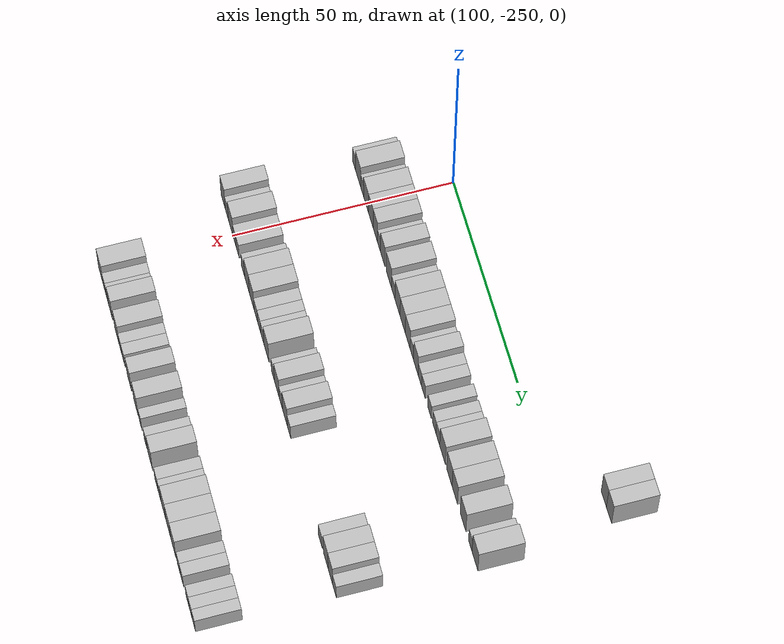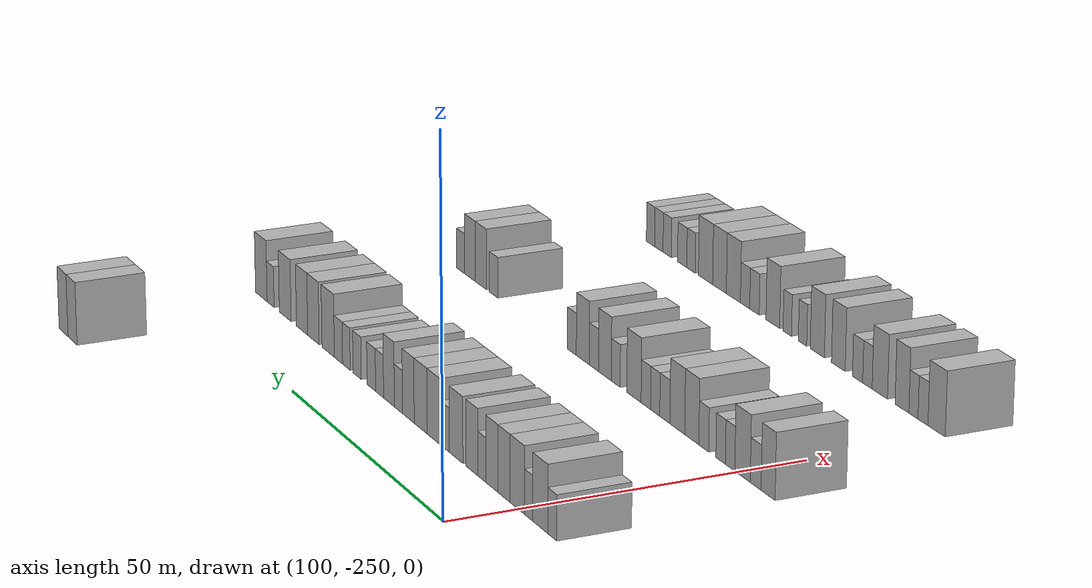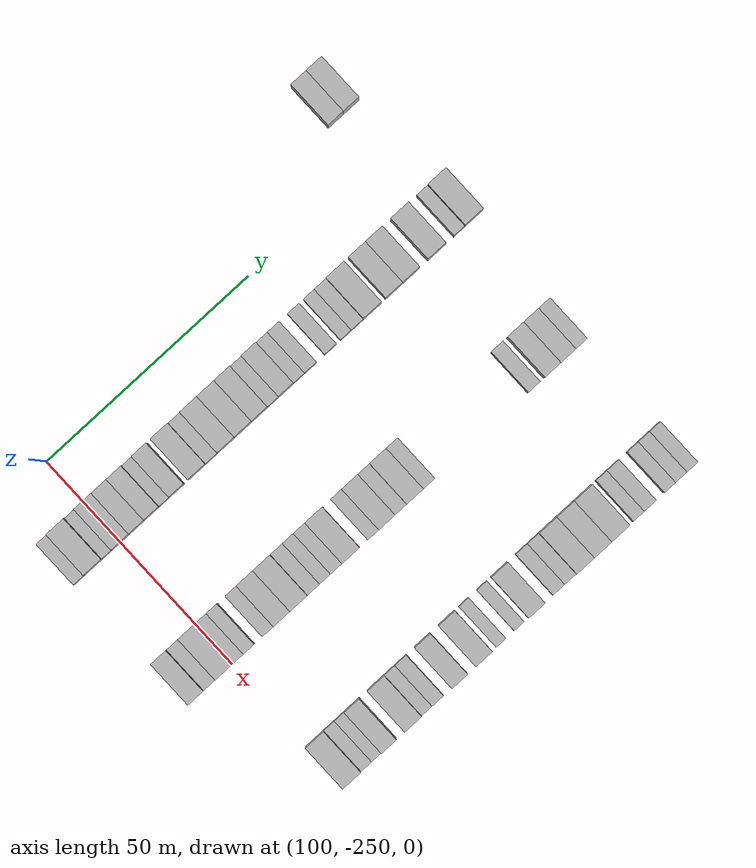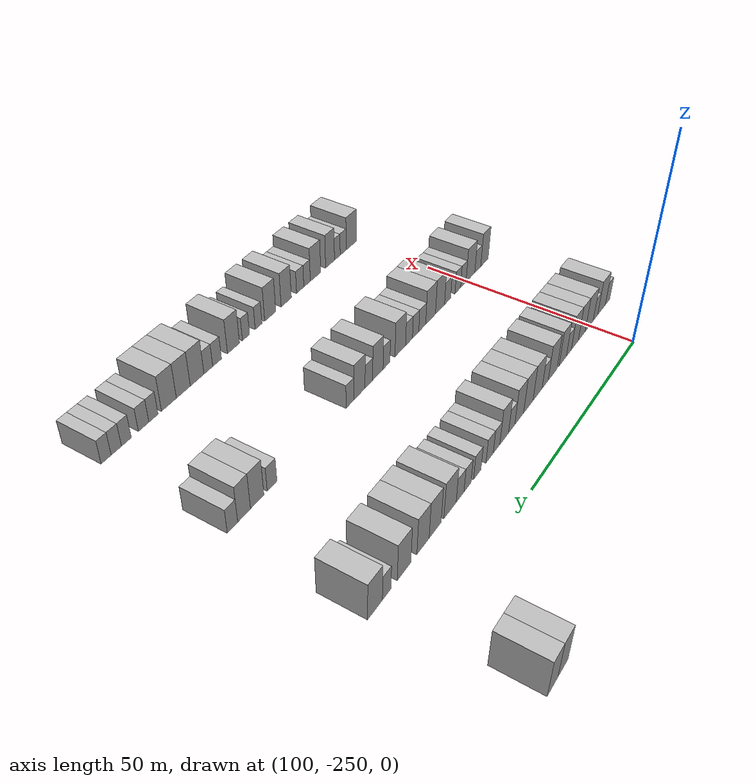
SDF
<sdf version="1.6">
 <world name="default">
  <model name="building_513">
   <static>1</static>
   <pose>85.0000 -169.2639 0 0.000000 0.000000 0.000000</pose>
   <link name="link">
    <pose>0 0 4.50 0 0 0</pose>
    <collision name="collision"><geometry><box><size>10.0000 3.7605 9.0000</size></box></geometry></collision>
    <visual name="visual">
     <cast_shadows>0</cast_shadows>
     <geometry><box><size>10.0000 3.7605 9.0000</size></box></geometry>
     <material>
      <script>
       <uri>model://HANNAS_wall/materials/scripts</uri>
       <uri>model://HANNAS_wall/materials/textures</uri>
       <name>vrc/HANNAS_wall</name>
      </script>
     </material>
    </visual>
   </link>
  </model>
  <model name="building_514">
   <static>1</static>
   <pose>85.0000 -165.4783 0 0.000000 0.000000 0.000000</pose>
   <link name="link">
    <pose>0 0 4.50 0 0 0</pose>
    <collision name="collision"><geometry><box><size>10.0000 3.8107 9.0000</size></box></geometry></collision>
    <visual name="visual">
     <cast_shadows>0</cast_shadows>
     <geometry><box><size>10.0000 3.8107 9.0000</size></box></geometry>
     <material>
      <script>
       <uri>model://HANNAS_wall/materials/scripts</uri>
       <uri>model://HANNAS_wall/materials/textures</uri>
       <name>vrc/HANNAS_wall</name>
      </script>
     </material>
    </visual>
   </link>
  </model>
  <model name="building_718">
   <static>1</static>
   <pose>115.0000 -259.9088 0 0.000000 0.000000 0.000000</pose>
   <link name="link">
    <pose>0 0 3.00 0 0 0</pose>
    <collision name="collision"><geometry><box><size>10.0000 2.6278 6.0000</size></box></geometry></collision>
    <visual name="visual">
     <cast_shadows>0</cast_shadows>
     <geometry><box><size>10.0000 2.6278 6.0000</size></box></geometry>
     <material>
      <script>
       <uri>model://HANNAS_wall/materials/scripts</uri>
       <uri>model://HANNAS_wall/materials/textures</uri>
       <name>vrc/HANNAS_wall</name>
      </script>
     </material>
    </visual>
   </link>
  </model>
  <model name="building_719">
   <static>1</static>
   <pose>115.0000 -256.4384 0 0.000000 0.000000 0.000000</pose>
   <link name="link">
    <pose>0 0 4.50 0 0 0</pose>
    <collision name="collision"><geometry><box><size>10.0000 4.3130 9.0000</size></box></geometry></collision>
    <visual name="visual">
     <cast_shadows>0</cast_shadows>
     <geometry><box><size>10.0000 4.3130 9.0000</size></box></geometry>
     <material>
      <script>
       <uri>model://HANNAS_wall/materials/scripts</uri>
       <uri>model://HANNAS_wall/materials/textures</uri>
       <name>vrc/HANNAS_wall</name>
      </script>
     </material>
    </visual>
   </link>
  </model>
  <model name="building_720">
   <static>1</static>
   <pose>115.0000 -253.0582 0 0.000000 0.000000 0.000000</pose>
   <link name="link">
    <pose>0 0 3.00 0 0 0</pose>
    <collision name="collision"><geometry><box><size>10.0000 2.4474 6.0000</size></box></geometry></collision>
    <visual name="visual">
     <cast_shadows>0</cast_shadows>
     <geometry><box><size>10.0000 2.4474 6.0000</size></box></geometry>
     <material>
      <script>
       <uri>model://HANNAS_wall/materials/scripts</uri>
       <uri>model://HANNAS_wall/materials/textures</uri>
       <name>vrc/HANNAS_wall</name>
      </script>
     </material>
    </visual>
   </link>
  </model>
  <model name="building_721">
   <static>1</static>
   <pose>115.0000 -249.6861 0 0.000000 0.000000 0.000000</pose>
   <link name="link">
    <pose>0 0 4.50 0 0 0</pose>
    <collision name="collision"><geometry><box><size>10.0000 4.2969 9.0000</size></box></geometry></collision>
    <visual name="visual">
     <cast_shadows>0</cast_shadows>
     <geometry><box><size>10.0000 4.2969 9.0000</size></box></geometry>
     <material>
      <script>
       <uri>model://HANNAS_wall/materials/scripts</uri>
       <uri>model://HANNAS_wall/materials/textures</uri>
       <name>vrc/HANNAS_wall</name>
      </script>
     </material>
    </visual>
   </link>
  </model>
  <model name="building_722">
   <static>1</static>
   <pose>115.0000 -245.6962 0 0.000000 0.000000 0.000000</pose>
   <link name="link">
    <pose>0 0 4.50 0 0 0</pose>
    <collision name="collision"><geometry><box><size>10.0000 3.6827 9.0000</size></box></geometry></collision>
    <visual name="visual">
     <cast_shadows>0</cast_shadows>
     <geometry><box><size>10.0000 3.6827 9.0000</size></box></geometry>
     <material>
      <script>
       <uri>model://HANNAS_wall/materials/scripts</uri>
       <uri>model://HANNAS_wall/materials/textures</uri>
       <name>vrc/HANNAS_wall</name>
      </script>
     </material>
    </visual>
   </link>
  </model>
  <model name="building_723">
   <static>1</static>
   <pose>115.0000 -242.0356 0 0.000000 0.000000 0.000000</pose>
   <link name="link">
    <pose>0 0 4.50 0 0 0</pose>
    <collision name="collision"><geometry><box><size>10.0000 3.6385 9.0000</size></box></geometry></collision>
    <visual name="visual">
     <cast_shadows>0</cast_shadows>
     <geometry><box><size>10.0000 3.6385 9.0000</size></box></geometry>
     <material>
      <script>
       <uri>model://HANNAS_wall/materials/scripts</uri>
       <uri>model://HANNAS_wall/materials/textures</uri>
       <name>vrc/HANNAS_wall</name>
      </script>
     </material>
    </visual>
   </link>
  </model>
  <model name="building_724">
   <static>1</static>
   <pose>115.0000 -238.9723 0 0.000000 0.000000 0.000000</pose>
   <link name="link">
    <pose>0 0 3.00 0 0 0</pose>
    <collision name="collision"><geometry><box><size>10.0000 2.4880 6.0000</size></box></geometry></collision>
    <visual name="visual">
     <cast_shadows>0</cast_shadows>
     <geometry><box><size>10.0000 2.4880 6.0000</size></box></geometry>
     <material>
      <script>
       <uri>model://HANNAS_wall/materials/scripts</uri>
       <uri>model://HANNAS_wall/materials/textures</uri>
       <name>vrc/HANNAS_wall</name>
      </script>
     </material>
    </visual>
   </link>
  </model>
  <model name="building_725">
   <static>1</static>
   <pose>115.0000 -235.9126 0 0.000000 0.000000 0.000000</pose>
   <link name="link">
    <pose>0 0 4.50 0 0 0</pose>
    <collision name="collision"><geometry><box><size>10.0000 3.6314 9.0000</size></box></geometry></collision>
    <visual name="visual">
     <cast_shadows>0</cast_shadows>
     <geometry><box><size>10.0000 3.6314 9.0000</size></box></geometry>
     <material>
      <script>
       <uri>model://HANNAS_wall/materials/scripts</uri>
       <uri>model://HANNAS_wall/materials/textures</uri>
       <name>vrc/HANNAS_wall</name>
      </script>
     </material>
    </visual>
   </link>
  </model>
  <model name="building_726">
   <static>1</static>
   <pose>115.0000 -230.9537 0 0.000000 0.000000 0.000000</pose>
   <link name="link">
    <pose>0 0 4.50 0 0 0</pose>
    <collision name="collision"><geometry><box><size>10.0000 4.2865 9.0000</size></box></geometry></collision>
    <visual name="visual">
     <cast_shadows>0</cast_shadows>
     <geometry><box><size>10.0000 4.2865 9.0000</size></box></geometry>
     <material>
      <script>
       <uri>model://HANNAS_wall/materials/scripts</uri>
       <uri>model://HANNAS_wall/materials/textures</uri>
       <name>vrc/HANNAS_wall</name>
      </script>
     </material>
    </visual>
   </link>
  </model>
  <model name="building_727">
   <static>1</static>
   <pose>115.0000 -227.3658 0 0.000000 0.000000 0.000000</pose>
   <link name="link">
    <pose>0 0 3.00 0 0 0</pose>
    <collision name="collision"><geometry><box><size>10.0000 2.8893 6.0000</size></box></geometry></collision>
    <visual name="visual">
     <cast_shadows>0</cast_shadows>
     <geometry><box><size>10.0000 2.8893 6.0000</size></box></geometry>
     <material>
      <script>
       <uri>model://HANNAS_wall/materials/scripts</uri>
       <uri>model://HANNAS_wall/materials/textures</uri>
       <name>vrc/HANNAS_wall</name>
      </script>
     </material>
    </visual>
   </link>
  </model>
  <model name="building_728">
   <static>1</static>
   <pose>115.0000 -223.8179 0 0.000000 0.000000 0.000000</pose>
   <link name="link">
    <pose>0 0 4.50 0 0 0</pose>
    <collision name="collision"><geometry><box><size>10.0000 4.2065 9.0000</size></box></geometry></collision>
    <visual name="visual">
     <cast_shadows>0</cast_shadows>
     <geometry><box><size>10.0000 4.2065 9.0000</size></box></geometry>
     <material>
      <script>
       <uri>model://HANNAS_wall/materials/scripts</uri>
       <uri>model://HANNAS_wall/materials/textures</uri>
       <name>vrc/HANNAS_wall</name>
      </script>
     </material>
    </visual>
   </link>
  </model>
  <model name="building_729">
   <static>1</static>
   <pose>115.0000 -219.5891 0 0.000000 0.000000 0.000000</pose>
   <link name="link">
    <pose>0 0 4.50 0 0 0</pose>
    <collision name="collision"><geometry><box><size>10.0000 4.2511 9.0000</size></box></geometry></collision>
    <visual name="visual">
     <cast_shadows>0</cast_shadows>
     <geometry><box><size>10.0000 4.2511 9.0000</size></box></geometry>
     <material>
      <script>
       <uri>model://HANNAS_wall/materials/scripts</uri>
       <uri>model://HANNAS_wall/materials/textures</uri>
       <name>vrc/HANNAS_wall</name>
      </script>
     </material>
    </visual>
   </link>
  </model>
  <model name="building_730">
   <static>1</static>
   <pose>115.0000 -215.5219 0 0.000000 0.000000 0.000000</pose>
   <link name="link">
    <pose>0 0 4.50 0 0 0</pose>
    <collision name="collision"><geometry><box><size>10.0000 3.8833 9.0000</size></box></geometry></collision>
    <visual name="visual">
     <cast_shadows>0</cast_shadows>
     <geometry><box><size>10.0000 3.8833 9.0000</size></box></geometry>
     <material>
      <script>
       <uri>model://HANNAS_wall/materials/scripts</uri>
       <uri>model://HANNAS_wall/materials/textures</uri>
       <name>vrc/HANNAS_wall</name>
      </script>
     </material>
    </visual>
   </link>
  </model>
  <model name="building_731">
   <static>1</static>
   <pose>115.0000 -212.2270 0 0.000000 0.000000 0.000000</pose>
   <link name="link">
    <pose>0 0 3.00 0 0 0</pose>
    <collision name="collision"><geometry><box><size>10.0000 2.7063 6.0000</size></box></geometry></collision>
    <visual name="visual">
     <cast_shadows>0</cast_shadows>
     <geometry><box><size>10.0000 2.7063 6.0000</size></box></geometry>
     <material>
      <script>
       <uri>model://HANNAS_wall/materials/scripts</uri>
       <uri>model://HANNAS_wall/materials/textures</uri>
       <name>vrc/HANNAS_wall</name>
      </script>
     </material>
    </visual>
   </link>
  </model>
  <model name="building_732">
   <static>1</static>
   <pose>115.0000 -209.0399 0 0.000000 0.000000 0.000000</pose>
   <link name="link">
    <pose>0 0 4.50 0 0 0</pose>
    <collision name="collision"><geometry><box><size>10.0000 3.6679 9.0000</size></box></geometry></collision>
    <visual name="visual">
     <cast_shadows>0</cast_shadows>
     <geometry><box><size>10.0000 3.6679 9.0000</size></box></geometry>
     <material>
      <script>
       <uri>model://HANNAS_wall/materials/scripts</uri>
       <uri>model://HANNAS_wall/materials/textures</uri>
       <name>vrc/HANNAS_wall</name>
      </script>
     </material>
    </visual>
   </link>
  </model>
  <model name="building_733">
   <static>1</static>
   <pose>115.0000 -205.8512 0 0.000000 0.000000 0.000000</pose>
   <link name="link">
    <pose>0 0 3.00 0 0 0</pose>
    <collision name="collision"><geometry><box><size>10.0000 2.7095 6.0000</size></box></geometry></collision>
    <visual name="visual">
     <cast_shadows>0</cast_shadows>
     <geometry><box><size>10.0000 2.7095 6.0000</size></box></geometry>
     <material>
      <script>
       <uri>model://HANNAS_wall/materials/scripts</uri>
       <uri>model://HANNAS_wall/materials/textures</uri>
       <name>vrc/HANNAS_wall</name>
      </script>
     </material>
    </visual>
   </link>
  </model>
  <model name="building_734">
   <static>1</static>
   <pose>115.0000 -203.0248 0 0.000000 0.000000 0.000000</pose>
   <link name="link">
    <pose>0 0 3.00 0 0 0</pose>
    <collision name="collision"><geometry><box><size>10.0000 2.9434 6.0000</size></box></geometry></collision>
    <visual name="visual">
     <cast_shadows>0</cast_shadows>
     <geometry><box><size>10.0000 2.9434 6.0000</size></box></geometry>
     <material>
      <script>
       <uri>model://HANNAS_wall/materials/scripts</uri>
       <uri>model://HANNAS_wall/materials/textures</uri>
       <name>vrc/HANNAS_wall</name>
      </script>
     </material>
    </visual>
   </link>
  </model>
  <model name="building_735">
   <static>1</static>
   <pose>115.0000 -198.1084 0 0.000000 0.000000 0.000000</pose>
   <link name="link">
    <pose>0 0 3.00 0 0 0</pose>
    <collision name="collision"><geometry><box><size>10.0000 2.8893 6.0000</size></box></geometry></collision>
    <visual name="visual">
     <cast_shadows>0</cast_shadows>
     <geometry><box><size>10.0000 2.8893 6.0000</size></box></geometry>
     <material>
      <script>
       <uri>model://HANNAS_wall/materials/scripts</uri>
       <uri>model://HANNAS_wall/materials/textures</uri>
       <name>vrc/HANNAS_wall</name>
      </script>
     </material>
    </visual>
   </link>
  </model>
  <model name="building_736">
   <static>1</static>
   <pose>115.0000 -194.3286 0 0.000000 0.000000 0.000000</pose>
   <link name="link">
    <pose>0 0 3.00 0 0 0</pose>
    <collision name="collision"><geometry><box><size>10.0000 2.6705 6.0000</size></box></geometry></collision>
    <visual name="visual">
     <cast_shadows>0</cast_shadows>
     <geometry><box><size>10.0000 2.6705 6.0000</size></box></geometry>
     <material>
      <script>
       <uri>model://HANNAS_wall/materials/scripts</uri>
       <uri>model://HANNAS_wall/materials/textures</uri>
       <name>vrc/HANNAS_wall</name>
      </script>
     </material>
    </visual>
   </link>
  </model>
  <model name="building_737">
   <static>1</static>
   <pose>115.0000 -191.5273 0 0.000000 0.000000 0.000000</pose>
   <link name="link">
    <pose>0 0 3.00 0 0 0</pose>
    <collision name="collision"><geometry><box><size>10.0000 2.9321 6.0000</size></box></geometry></collision>
    <visual name="visual">
     <cast_shadows>0</cast_shadows>
     <geometry><box><size>10.0000 2.9321 6.0000</size></box></geometry>
     <material>
      <script>
       <uri>model://HANNAS_wall/materials/scripts</uri>
       <uri>model://HANNAS_wall/materials/textures</uri>
       <name>vrc/HANNAS_wall</name>
      </script>
     </material>
    </visual>
   </link>
  </model>
  <model name="building_738">
   <static>1</static>
   <pose>115.0000 -187.8196 0 0.000000 0.000000 0.000000</pose>
   <link name="link">
    <pose>0 0 4.50 0 0 0</pose>
    <collision name="collision"><geometry><box><size>10.0000 4.4832 9.0000</size></box></geometry></collision>
    <visual name="visual">
     <cast_shadows>0</cast_shadows>
     <geometry><box><size>10.0000 4.4832 9.0000</size></box></geometry>
     <material>
      <script>
       <uri>model://HANNAS_wall/materials/scripts</uri>
       <uri>model://HANNAS_wall/materials/textures</uri>
       <name>vrc/HANNAS_wall</name>
      </script>
     </material>
    </visual>
   </link>
  </model>
  <model name="building_739">
   <static>1</static>
   <pose>115.0000 -182.4810 0 0.000000 0.000000 0.000000</pose>
   <link name="link">
    <pose>0 0 4.50 0 0 0</pose>
    <collision name="collision"><geometry><box><size>10.0000 4.1940 9.0000</size></box></geometry></collision>
    <visual name="visual">
     <cast_shadows>0</cast_shadows>
     <geometry><box><size>10.0000 4.1940 9.0000</size></box></geometry>
     <material>
      <script>
       <uri>model://HANNAS_wall/materials/scripts</uri>
       <uri>model://HANNAS_wall/materials/textures</uri>
       <name>vrc/HANNAS_wall</name>
      </script>
     </material>
    </visual>
   </link>
  </model>
  <model name="building_740">
   <static>1</static>
   <pose>115.0000 -178.2935 0 0.000000 0.000000 0.000000</pose>
   <link name="link">
    <pose>0 0 4.50 0 0 0</pose>
    <collision name="collision"><geometry><box><size>10.0000 4.1810 9.0000</size></box></geometry></collision>
    <visual name="visual">
     <cast_shadows>0</cast_shadows>
     <geometry><box><size>10.0000 4.1810 9.0000</size></box></geometry>
     <material>
      <script>
       <uri>model://HANNAS_wall/materials/scripts</uri>
       <uri>model://HANNAS_wall/materials/textures</uri>
       <name>vrc/HANNAS_wall</name>
      </script>
     </material>
    </visual>
   </link>
  </model>
  <model name="building_741">
   <static>1</static>
   <pose>115.0000 -171.9865 0 0.000000 0.000000 0.000000</pose>
   <link name="link">
    <pose>0 0 4.50 0 0 0</pose>
    <collision name="collision"><geometry><box><size>10.0000 4.4330 9.0000</size></box></geometry></collision>
    <visual name="visual">
     <cast_shadows>0</cast_shadows>
     <geometry><box><size>10.0000 4.4330 9.0000</size></box></geometry>
     <material>
      <script>
       <uri>model://HANNAS_wall/materials/scripts</uri>
       <uri>model://HANNAS_wall/materials/textures</uri>
       <name>vrc/HANNAS_wall</name>
      </script>
     </material>
    </visual>
   </link>
  </model>
  <model name="building_742">
   <static>1</static>
   <pose>115.0000 -166.4350 0 0.000000 0.000000 0.000000</pose>
   <link name="link">
    <pose>0 0 3.00 0 0 0</pose>
    <collision name="collision"><geometry><box><size>10.0000 2.6701 6.0000</size></box></geometry></collision>
    <visual name="visual">
     <cast_shadows>0</cast_shadows>
     <geometry><box><size>10.0000 2.6701 6.0000</size></box></geometry>
     <material>
      <script>
       <uri>model://HANNAS_wall/materials/scripts</uri>
       <uri>model://HANNAS_wall/materials/textures</uri>
       <name>vrc/HANNAS_wall</name>
      </script>
     </material>
    </visual>
   </link>
  </model>
  <model name="building_743">
   <static>1</static>
   <pose>115.0000 -162.8567 0 0.000000 0.000000 0.000000</pose>
   <link name="link">
    <pose>0 0 4.50 0 0 0</pose>
    <collision name="collision"><geometry><box><size>10.0000 4.4865 9.0000</size></box></geometry></collision>
    <visual name="visual">
     <cast_shadows>0</cast_shadows>
     <geometry><box><size>10.0000 4.4865 9.0000</size></box></geometry>
     <material>
      <script>
       <uri>model://HANNAS_wall/materials/scripts</uri>
       <uri>model://HANNAS_wall/materials/textures</uri>
       <name>vrc/HANNAS_wall</name>
      </script>
     </material>
    </visual>
   </link>
  </model>
  <model name="building_938">
   <static>1</static>
   <pose>145.0000 -258.6281 0 0.000000 0.000000 0.000000</pose>
   <link name="link">
    <pose>0 0 4.50 0 0 0</pose>
    <collision name="collision"><geometry><box><size>10.0000 3.7372 9.0000</size></box></geometry></collision>
    <visual name="visual">
     <cast_shadows>0</cast_shadows>
     <geometry><box><size>10.0000 3.7372 9.0000</size></box></geometry>
     <material>
      <script>
       <uri>model://HANNAS_wall/materials/scripts</uri>
       <uri>model://HANNAS_wall/materials/textures</uri>
       <name>vrc/HANNAS_wall</name>
      </script>
     </material>
    </visual>
   </link>
  </model>
  <model name="building_939">
   <static>1</static>
   <pose>145.0000 -255.3011 0 0.000000 0.000000 0.000000</pose>
   <link name="link">
    <pose>0 0 3.00 0 0 0</pose>
    <collision name="collision"><geometry><box><size>10.0000 2.9167 6.0000</size></box></geometry></collision>
    <visual name="visual">
     <cast_shadows>0</cast_shadows>
     <geometry><box><size>10.0000 2.9167 6.0000</size></box></geometry>
     <material>
      <script>
       <uri>model://HANNAS_wall/materials/scripts</uri>
       <uri>model://HANNAS_wall/materials/textures</uri>
       <name>vrc/HANNAS_wall</name>
      </script>
     </material>
    </visual>
   </link>
  </model>
  <model name="building_940">
   <static>1</static>
   <pose>145.0000 -251.7324 0 0.000000 0.000000 0.000000</pose>
   <link name="link">
    <pose>0 0 4.50 0 0 0</pose>
    <collision name="collision"><geometry><box><size>10.0000 4.2208 9.0000</size></box></geometry></collision>
    <visual name="visual">
     <cast_shadows>0</cast_shadows>
     <geometry><box><size>10.0000 4.2208 9.0000</size></box></geometry>
     <material>
      <script>
       <uri>model://HANNAS_wall/materials/scripts</uri>
       <uri>model://HANNAS_wall/materials/textures</uri>
       <name>vrc/HANNAS_wall</name>
      </script>
     </material>
    </visual>
   </link>
  </model>
  <model name="building_941">
   <static>1</static>
   <pose>145.0000 -248.3263 0 0.000000 0.000000 0.000000</pose>
   <link name="link">
    <pose>0 0 3.00 0 0 0</pose>
    <collision name="collision"><geometry><box><size>10.0000 2.5914 6.0000</size></box></geometry></collision>
    <visual name="visual">
     <cast_shadows>0</cast_shadows>
     <geometry><box><size>10.0000 2.5914 6.0000</size></box></geometry>
     <material>
      <script>
       <uri>model://HANNAS_wall/materials/scripts</uri>
       <uri>model://HANNAS_wall/materials/textures</uri>
       <name>vrc/HANNAS_wall</name>
      </script>
     </material>
    </visual>
   </link>
  </model>
  <model name="building_942">
   <static>1</static>
   <pose>145.0000 -245.7101 0 0.000000 0.000000 0.000000</pose>
   <link name="link">
    <pose>0 0 3.00 0 0 0</pose>
    <collision name="collision"><geometry><box><size>10.0000 2.6410 6.0000</size></box></geometry></collision>
    <visual name="visual">
     <cast_shadows>0</cast_shadows>
     <geometry><box><size>10.0000 2.6410 6.0000</size></box></geometry>
     <material>
      <script>
       <uri>model://HANNAS_wall/materials/scripts</uri>
       <uri>model://HANNAS_wall/materials/textures</uri>
       <name>vrc/HANNAS_wall</name>
      </script>
     </material>
    </visual>
   </link>
  </model>
  <model name="building_943">
   <static>1</static>
   <pose>145.0000 -240.9870 0 0.000000 0.000000 0.000000</pose>
   <link name="link">
    <pose>0 0 3.00 0 0 0</pose>
    <collision name="collision"><geometry><box><size>10.0000 2.8051 6.0000</size></box></geometry></collision>
    <visual name="visual">
     <cast_shadows>0</cast_shadows>
     <geometry><box><size>10.0000 2.8051 6.0000</size></box></geometry>
     <material>
      <script>
       <uri>model://HANNAS_wall/materials/scripts</uri>
       <uri>model://HANNAS_wall/materials/textures</uri>
       <name>vrc/HANNAS_wall</name>
      </script>
     </material>
    </visual>
   </link>
  </model>
  <model name="building_944">
   <static>1</static>
   <pose>145.0000 -237.5605 0 0.000000 0.000000 0.000000</pose>
   <link name="link">
    <pose>0 0 4.50 0 0 0</pose>
    <collision name="collision"><geometry><box><size>10.0000 4.0480 9.0000</size></box></geometry></collision>
    <visual name="visual">
     <cast_shadows>0</cast_shadows>
     <geometry><box><size>10.0000 4.0480 9.0000</size></box></geometry>
     <material>
      <script>
       <uri>model://HANNAS_wall/materials/scripts</uri>
       <uri>model://HANNAS_wall/materials/textures</uri>
       <name>vrc/HANNAS_wall</name>
      </script>
     </material>
    </visual>
   </link>
  </model>
  <model name="building_945">
   <static>1</static>
   <pose>145.0000 -233.4105 0 0.000000 0.000000 0.000000</pose>
   <link name="link">
    <pose>0 0 4.50 0 0 0</pose>
    <collision name="collision"><geometry><box><size>10.0000 4.2520 9.0000</size></box></geometry></collision>
    <visual name="visual">
     <cast_shadows>0</cast_shadows>
     <geometry><box><size>10.0000 4.2520 9.0000</size></box></geometry>
     <material>
      <script>
       <uri>model://HANNAS_wall/materials/scripts</uri>
       <uri>model://HANNAS_wall/materials/textures</uri>
       <name>vrc/HANNAS_wall</name>
      </script>
     </material>
    </visual>
   </link>
  </model>
  <model name="building_946">
   <static>1</static>
   <pose>145.0000 -229.7944 0 0.000000 0.000000 0.000000</pose>
   <link name="link">
    <pose>0 0 3.00 0 0 0</pose>
    <collision name="collision"><geometry><box><size>10.0000 2.9802 6.0000</size></box></geometry></collision>
    <visual name="visual">
     <cast_shadows>0</cast_shadows>
     <geometry><box><size>10.0000 2.9802 6.0000</size></box></geometry>
     <material>
      <script>
       <uri>model://HANNAS_wall/materials/scripts</uri>
       <uri>model://HANNAS_wall/materials/textures</uri>
       <name>vrc/HANNAS_wall</name>
      </script>
     </material>
    </visual>
   </link>
  </model>
  <model name="building_947">
   <static>1</static>
   <pose>145.0000 -226.9756 0 0.000000 0.000000 0.000000</pose>
   <link name="link">
    <pose>0 0 3.00 0 0 0</pose>
    <collision name="collision"><geometry><box><size>10.0000 2.6575 6.0000</size></box></geometry></collision>
    <visual name="visual">
     <cast_shadows>0</cast_shadows>
     <geometry><box><size>10.0000 2.6575 6.0000</size></box></geometry>
     <material>
      <script>
       <uri>model://HANNAS_wall/materials/scripts</uri>
       <uri>model://HANNAS_wall/materials/textures</uri>
       <name>vrc/HANNAS_wall</name>
      </script>
     </material>
    </visual>
   </link>
  </model>
  <model name="building_948">
   <static>1</static>
   <pose>145.0000 -224.2176 0 0.000000 0.000000 0.000000</pose>
   <link name="link">
    <pose>0 0 3.00 0 0 0</pose>
    <collision name="collision"><geometry><box><size>10.0000 2.8584 6.0000</size></box></geometry></collision>
    <visual name="visual">
     <cast_shadows>0</cast_shadows>
     <geometry><box><size>10.0000 2.8584 6.0000</size></box></geometry>
     <material>
      <script>
       <uri>model://HANNAS_wall/materials/scripts</uri>
       <uri>model://HANNAS_wall/materials/textures</uri>
       <name>vrc/HANNAS_wall</name>
      </script>
     </material>
    </visual>
   </link>
  </model>
  <model name="building_949">
   <static>1</static>
   <pose>145.0000 -220.6368 0 0.000000 0.000000 0.000000</pose>
   <link name="link">
    <pose>0 0 4.50 0 0 0</pose>
    <collision name="collision"><geometry><box><size>10.0000 4.3031 9.0000</size></box></geometry></collision>
    <visual name="visual">
     <cast_shadows>0</cast_shadows>
     <geometry><box><size>10.0000 4.3031 9.0000</size></box></geometry>
     <material>
      <script>
       <uri>model://HANNAS_wall/materials/scripts</uri>
       <uri>model://HANNAS_wall/materials/textures</uri>
       <name>vrc/HANNAS_wall</name>
      </script>
     </material>
    </visual>
   </link>
  </model>
  <model name="building_950">
   <static>1</static>
   <pose>145.0000 -215.1354 0 0.000000 0.000000 0.000000</pose>
   <link name="link">
    <pose>0 0 3.00 0 0 0</pose>
    <collision name="collision"><geometry><box><size>10.0000 2.6997 6.0000</size></box></geometry></collision>
    <visual name="visual">
     <cast_shadows>0</cast_shadows>
     <geometry><box><size>10.0000 2.6997 6.0000</size></box></geometry>
     <material>
      <script>
       <uri>model://HANNAS_wall/materials/scripts</uri>
       <uri>model://HANNAS_wall/materials/textures</uri>
       <name>vrc/HANNAS_wall</name>
      </script>
     </material>
    </visual>
   </link>
  </model>
  <model name="building_951">
   <static>1</static>
   <pose>145.0000 -211.7871 0 0.000000 0.000000 0.000000</pose>
   <link name="link">
    <pose>0 0 4.50 0 0 0</pose>
    <collision name="collision"><geometry><box><size>10.0000 3.9969 9.0000</size></box></geometry></collision>
    <visual name="visual">
     <cast_shadows>0</cast_shadows>
     <geometry><box><size>10.0000 3.9969 9.0000</size></box></geometry>
     <material>
      <script>
       <uri>model://HANNAS_wall/materials/scripts</uri>
       <uri>model://HANNAS_wall/materials/textures</uri>
       <name>vrc/HANNAS_wall</name>
      </script>
     </material>
    </visual>
   </link>
  </model>
  <model name="building_952">
   <static>1</static>
   <pose>145.0000 -208.3640 0 0.000000 0.000000 0.000000</pose>
   <link name="link">
    <pose>0 0 3.00 0 0 0</pose>
    <collision name="collision"><geometry><box><size>10.0000 2.8494 6.0000</size></box></geometry></collision>
    <visual name="visual">
     <cast_shadows>0</cast_shadows>
     <geometry><box><size>10.0000 2.8494 6.0000</size></box></geometry>
     <material>
      <script>
       <uri>model://HANNAS_wall/materials/scripts</uri>
       <uri>model://HANNAS_wall/materials/textures</uri>
       <name>vrc/HANNAS_wall</name>
      </script>
     </material>
    </visual>
   </link>
  </model>
  <model name="building_953">
   <static>1</static>
   <pose>145.0000 -204.8923 0 0.000000 0.000000 0.000000</pose>
   <link name="link">
    <pose>0 0 4.50 0 0 0</pose>
    <collision name="collision"><geometry><box><size>10.0000 4.0941 9.0000</size></box></geometry></collision>
    <visual name="visual">
     <cast_shadows>0</cast_shadows>
     <geometry><box><size>10.0000 4.0941 9.0000</size></box></geometry>
     <material>
      <script>
       <uri>model://HANNAS_wall/materials/scripts</uri>
       <uri>model://HANNAS_wall/materials/textures</uri>
       <name>vrc/HANNAS_wall</name>
      </script>
     </material>
    </visual>
   </link>
  </model>
  <model name="building_954">
   <static>1</static>
   <pose>145.0000 -201.4235 0 0.000000 0.000000 0.000000</pose>
   <link name="link">
    <pose>0 0 3.00 0 0 0</pose>
    <collision name="collision"><geometry><box><size>10.0000 2.8434 6.0000</size></box></geometry></collision>
    <visual name="visual">
     <cast_shadows>0</cast_shadows>
     <geometry><box><size>10.0000 2.8434 6.0000</size></box></geometry>
     <material>
      <script>
       <uri>model://HANNAS_wall/materials/scripts</uri>
       <uri>model://HANNAS_wall/materials/textures</uri>
       <name>vrc/HANNAS_wall</name>
      </script>
     </material>
    </visual>
   </link>
  </model>
  <model name="building_955">
   <static>1</static>
   <pose>145.0000 -175.5742 0 0.000000 0.000000 0.000000</pose>
   <link name="link">
    <pose>0 0 3.00 0 0 0</pose>
    <collision name="collision"><geometry><box><size>10.0000 2.9518 6.0000</size></box></geometry></collision>
    <visual name="visual">
     <cast_shadows>0</cast_shadows>
     <geometry><box><size>10.0000 2.9518 6.0000</size></box></geometry>
     <material>
      <script>
       <uri>model://HANNAS_wall/materials/scripts</uri>
       <uri>model://HANNAS_wall/materials/textures</uri>
       <name>vrc/HANNAS_wall</name>
      </script>
     </material>
    </visual>
   </link>
  </model>
  <model name="building_956">
   <static>1</static>
   <pose>145.0000 -171.1241 0 0.000000 0.000000 0.000000</pose>
   <link name="link">
    <pose>0 0 4.50 0 0 0</pose>
    <collision name="collision"><geometry><box><size>10.0000 3.9485 9.0000</size></box></geometry></collision>
    <visual name="visual">
     <cast_shadows>0</cast_shadows>
     <geometry><box><size>10.0000 3.9485 9.0000</size></box></geometry>
     <material>
      <script>
       <uri>model://HANNAS_wall/materials/scripts</uri>
       <uri>model://HANNAS_wall/materials/textures</uri>
       <name>vrc/HANNAS_wall</name>
      </script>
     </material>
    </visual>
   </link>
  </model>
  <model name="building_957">
   <static>1</static>
   <pose>145.0000 -167.3142 0 0.000000 0.000000 0.000000</pose>
   <link name="link">
    <pose>0 0 4.50 0 0 0</pose>
    <collision name="collision"><geometry><box><size>10.0000 3.6712 9.0000</size></box></geometry></collision>
    <visual name="visual">
     <cast_shadows>0</cast_shadows>
     <geometry><box><size>10.0000 3.6712 9.0000</size></box></geometry>
     <material>
      <script>
       <uri>model://HANNAS_wall/materials/scripts</uri>
       <uri>model://HANNAS_wall/materials/textures</uri>
       <name>vrc/HANNAS_wall</name>
      </script>
     </material>
    </visual>
   </link>
  </model>
  <model name="building_958">
   <static>1</static>
   <pose>145.0000 -164.0159 0 0.000000 0.000000 0.000000</pose>
   <link name="link">
    <pose>0 0 3.00 0 0 0</pose>
    <collision name="collision"><geometry><box><size>10.0000 2.9254 6.0000</size></box></geometry></collision>
    <visual name="visual">
     <cast_shadows>0</cast_shadows>
     <geometry><box><size>10.0000 2.9254 6.0000</size></box></geometry>
     <material>
      <script>
       <uri>model://HANNAS_wall/materials/scripts</uri>
       <uri>model://HANNAS_wall/materials/textures</uri>
       <name>vrc/HANNAS_wall</name>
      </script>
     </material>
    </visual>
   </link>
  </model>
  <model name="building_1172">
   <static>1</static>
   <pose>175.0000 -247.9325 0 0.000000 0.000000 0.000000</pose>
   <link name="link">
    <pose>0 0 4.50 0 0 0</pose>
    <collision name="collision"><geometry><box><size>10.0000 4.4801 9.0000</size></box></geometry></collision>
    <visual name="visual">
     <cast_shadows>0</cast_shadows>
     <geometry><box><size>10.0000 4.4801 9.0000</size></box></geometry>
     <material>
      <script>
       <uri>model://HANNAS_wall/materials/scripts</uri>
       <uri>model://HANNAS_wall/materials/textures</uri>
       <name>vrc/HANNAS_wall</name>
      </script>
     </material>
    </visual>
   </link>
  </model>
  <model name="building_1173">
   <static>1</static>
   <pose>175.0000 -244.3978 0 0.000000 0.000000 0.000000</pose>
   <link name="link">
    <pose>0 0 3.00 0 0 0</pose>
    <collision name="collision"><geometry><box><size>10.0000 2.5894 6.0000</size></box></geometry></collision>
    <visual name="visual">
     <cast_shadows>0</cast_shadows>
     <geometry><box><size>10.0000 2.5894 6.0000</size></box></geometry>
     <material>
      <script>
       <uri>model://HANNAS_wall/materials/scripts</uri>
       <uri>model://HANNAS_wall/materials/textures</uri>
       <name>vrc/HANNAS_wall</name>
      </script>
     </material>
    </visual>
   </link>
  </model>
  <model name="building_1174">
   <static>1</static>
   <pose>175.0000 -241.9008 0 0.000000 0.000000 0.000000</pose>
   <link name="link">
    <pose>0 0 3.00 0 0 0</pose>
    <collision name="collision"><geometry><box><size>10.0000 2.4045 6.0000</size></box></geometry></collision>
    <visual name="visual">
     <cast_shadows>0</cast_shadows>
     <geometry><box><size>10.0000 2.4045 6.0000</size></box></geometry>
     <material>
      <script>
       <uri>model://HANNAS_wall/materials/scripts</uri>
       <uri>model://HANNAS_wall/materials/textures</uri>
       <name>vrc/HANNAS_wall</name>
      </script>
     </material>
    </visual>
   </link>
  </model>
  <model name="building_1175">
   <static>1</static>
   <pose>175.0000 -238.8505 0 0.000000 0.000000 0.000000</pose>
   <link name="link">
    <pose>0 0 4.50 0 0 0</pose>
    <collision name="collision"><geometry><box><size>10.0000 3.6961 9.0000</size></box></geometry></collision>
    <visual name="visual">
     <cast_shadows>0</cast_shadows>
     <geometry><box><size>10.0000 3.6961 9.0000</size></box></geometry>
     <material>
      <script>
       <uri>model://HANNAS_wall/materials/scripts</uri>
       <uri>model://HANNAS_wall/materials/textures</uri>
       <name>vrc/HANNAS_wall</name>
      </script>
     </material>
    </visual>
   </link>
  </model>
  <model name="building_1176">
   <static>1</static>
   <pose>175.0000 -232.9121 0 0.000000 0.000000 0.000000</pose>
   <link name="link">
    <pose>0 0 4.50 0 0 0</pose>
    <collision name="collision"><geometry><box><size>10.0000 4.1807 9.0000</size></box></geometry></collision>
    <visual name="visual">
     <cast_shadows>0</cast_shadows>
     <geometry><box><size>10.0000 4.1807 9.0000</size></box></geometry>
     <material>
      <script>
       <uri>model://HANNAS_wall/materials/scripts</uri>
       <uri>model://HANNAS_wall/materials/textures</uri>
       <name>vrc/HANNAS_wall</name>
      </script>
     </material>
    </visual>
   </link>
  </model>
  <model name="building_1177">
   <static>1</static>
   <pose>175.0000 -229.5361 0 0.000000 0.000000 0.000000</pose>
   <link name="link">
    <pose>0 0 3.00 0 0 0</pose>
    <collision name="collision"><geometry><box><size>10.0000 2.5712 6.0000</size></box></geometry></collision>
    <visual name="visual">
     <cast_shadows>0</cast_shadows>
     <geometry><box><size>10.0000 2.5712 6.0000</size></box></geometry>
     <material>
      <script>
       <uri>model://HANNAS_wall/materials/scripts</uri>
       <uri>model://HANNAS_wall/materials/textures</uri>
       <name>vrc/HANNAS_wall</name>
      </script>
     </material>
    </visual>
   </link>
  </model>
  <model name="building_1178">
   <static>1</static>
   <pose>175.0000 -226.8401 0 0.000000 0.000000 0.000000</pose>
   <link name="link">
    <pose>0 0 3.00 0 0 0</pose>
    <collision name="collision"><geometry><box><size>10.0000 2.8208 6.0000</size></box></geometry></collision>
    <visual name="visual">
     <cast_shadows>0</cast_shadows>
     <geometry><box><size>10.0000 2.8208 6.0000</size></box></geometry>
     <material>
      <script>
       <uri>model://HANNAS_wall/materials/scripts</uri>
       <uri>model://HANNAS_wall/materials/textures</uri>
       <name>vrc/HANNAS_wall</name>
      </script>
     </material>
    </visual>
   </link>
  </model>
  <model name="building_1179">
   <static>1</static>
   <pose>175.0000 -221.4956 0 0.000000 0.000000 0.000000</pose>
   <link name="link">
    <pose>0 0 4.50 0 0 0</pose>
    <collision name="collision"><geometry><box><size>10.0000 3.8682 9.0000</size></box></geometry></collision>
    <visual name="visual">
     <cast_shadows>0</cast_shadows>
     <geometry><box><size>10.0000 3.8682 9.0000</size></box></geometry>
     <material>
      <script>
       <uri>model://HANNAS_wall/materials/scripts</uri>
       <uri>model://HANNAS_wall/materials/textures</uri>
       <name>vrc/HANNAS_wall</name>
      </script>
     </material>
    </visual>
   </link>
  </model>
  <model name="building_1180">
   <static>1</static>
   <pose>175.0000 -215.5370 0 0.000000 0.000000 0.000000</pose>
   <link name="link">
    <pose>0 0 4.50 0 0 0</pose>
    <collision name="collision"><geometry><box><size>10.0000 4.0491 9.0000</size></box></geometry></collision>
    <visual name="visual">
     <cast_shadows>0</cast_shadows>
     <geometry><box><size>10.0000 4.0491 9.0000</size></box></geometry>
     <material>
      <script>
       <uri>model://HANNAS_wall/materials/scripts</uri>
       <uri>model://HANNAS_wall/materials/textures</uri>
       <name>vrc/HANNAS_wall</name>
      </script>
     </material>
    </visual>
   </link>
  </model>
  <model name="building_1181">
   <static>1</static>
   <pose>175.0000 -211.3100 0 0.000000 0.000000 0.000000</pose>
   <link name="link">
    <pose>0 0 3.00 0 0 0</pose>
    <collision name="collision"><geometry><box><size>10.0000 2.4050 6.0000</size></box></geometry></collision>
    <visual name="visual">
     <cast_shadows>0</cast_shadows>
     <geometry><box><size>10.0000 2.4050 6.0000</size></box></geometry>
     <material>
      <script>
       <uri>model://HANNAS_wall/materials/scripts</uri>
       <uri>model://HANNAS_wall/materials/textures</uri>
       <name>vrc/HANNAS_wall</name>
      </script>
     </material>
    </visual>
   </link>
  </model>
  <model name="building_1182">
   <static>1</static>
   <pose>175.0000 -206.8720 0 0.000000 0.000000 0.000000</pose>
   <link name="link">
    <pose>0 0 3.00 0 0 0</pose>
    <collision name="collision"><geometry><box><size>10.0000 2.4709 6.0000</size></box></geometry></collision>
    <visual name="visual">
     <cast_shadows>0</cast_shadows>
     <geometry><box><size>10.0000 2.4709 6.0000</size></box></geometry>
     <material>
      <script>
       <uri>model://HANNAS_wall/materials/scripts</uri>
       <uri>model://HANNAS_wall/materials/textures</uri>
       <name>vrc/HANNAS_wall</name>
      </script>
     </material>
    </visual>
   </link>
  </model>
  <model name="building_1183">
   <static>1</static>
   <pose>175.0000 -202.6018 0 0.000000 0.000000 0.000000</pose>
   <link name="link">
    <pose>0 0 4.50 0 0 0</pose>
    <collision name="collision"><geometry><box><size>10.0000 4.0697 9.0000</size></box></geometry></collision>
    <visual name="visual">
     <cast_shadows>0</cast_shadows>
     <geometry><box><size>10.0000 4.0697 9.0000</size></box></geometry>
     <material>
      <script>
       <uri>model://HANNAS_wall/materials/scripts</uri>
       <uri>model://HANNAS_wall/materials/textures</uri>
       <name>vrc/HANNAS_wall</name>
      </script>
     </material>
    </visual>
   </link>
  </model>
  <model name="building_1184">
   <static>1</static>
   <pose>175.0000 -197.1306 0 0.000000 0.000000 0.000000</pose>
   <link name="link">
    <pose>0 0 3.00 0 0 0</pose>
    <collision name="collision"><geometry><box><size>10.0000 2.8726 6.0000</size></box></geometry></collision>
    <visual name="visual">
     <cast_shadows>0</cast_shadows>
     <geometry><box><size>10.0000 2.8726 6.0000</size></box></geometry>
     <material>
      <script>
       <uri>model://HANNAS_wall/materials/scripts</uri>
       <uri>model://HANNAS_wall/materials/textures</uri>
       <name>vrc/HANNAS_wall</name>
      </script>
     </material>
    </visual>
   </link>
  </model>
  <model name="building_1185">
   <static>1</static>
   <pose>175.0000 -194.2874 0 0.000000 0.000000 0.000000</pose>
   <link name="link">
    <pose>0 0 3.00 0 0 0</pose>
    <collision name="collision"><geometry><box><size>10.0000 2.8139 6.0000</size></box></geometry></collision>
    <visual name="visual">
     <cast_shadows>0</cast_shadows>
     <geometry><box><size>10.0000 2.8139 6.0000</size></box></geometry>
     <material>
      <script>
       <uri>model://HANNAS_wall/materials/scripts</uri>
       <uri>model://HANNAS_wall/materials/textures</uri>
       <name>vrc/HANNAS_wall</name>
      </script>
     </material>
    </visual>
   </link>
  </model>
  <model name="building_1186">
   <static>1</static>
   <pose>175.0000 -190.7204 0 0.000000 0.000000 0.000000</pose>
   <link name="link">
    <pose>0 0 4.50 0 0 0</pose>
    <collision name="collision"><geometry><box><size>10.0000 4.3201 9.0000</size></box></geometry></collision>
    <visual name="visual">
     <cast_shadows>0</cast_shadows>
     <geometry><box><size>10.0000 4.3201 9.0000</size></box></geometry>
     <material>
      <script>
       <uri>model://HANNAS_wall/materials/scripts</uri>
       <uri>model://HANNAS_wall/materials/textures</uri>
       <name>vrc/HANNAS_wall</name>
      </script>
     </material>
    </visual>
   </link>
  </model>
  <model name="building_1187">
   <static>1</static>
   <pose>175.0000 -186.4252 0 0.000000 0.000000 0.000000</pose>
   <link name="link">
    <pose>0 0 4.50 0 0 0</pose>
    <collision name="collision"><geometry><box><size>10.0000 4.2703 9.0000</size></box></geometry></collision>
    <visual name="visual">
     <cast_shadows>0</cast_shadows>
     <geometry><box><size>10.0000 4.2703 9.0000</size></box></geometry>
     <material>
      <script>
       <uri>model://HANNAS_wall/materials/scripts</uri>
       <uri>model://HANNAS_wall/materials/textures</uri>
       <name>vrc/HANNAS_wall</name>
      </script>
     </material>
    </visual>
   </link>
  </model>
  <model name="building_1188">
   <static>1</static>
   <pose>175.0000 -182.0595 0 0.000000 0.000000 0.000000</pose>
   <link name="link">
    <pose>0 0 4.50 0 0 0</pose>
    <collision name="collision"><geometry><box><size>10.0000 4.4610 9.0000</size></box></geometry></collision>
    <visual name="visual">
     <cast_shadows>0</cast_shadows>
     <geometry><box><size>10.0000 4.4610 9.0000</size></box></geometry>
     <material>
      <script>
       <uri>model://HANNAS_wall/materials/scripts</uri>
       <uri>model://HANNAS_wall/materials/textures</uri>
       <name>vrc/HANNAS_wall</name>
      </script>
     </material>
    </visual>
   </link>
  </model>
  <model name="building_1189">
   <static>1</static>
   <pose>175.0000 -177.4926 0 0.000000 0.000000 0.000000</pose>
   <link name="link">
    <pose>0 0 3.00 0 0 0</pose>
    <collision name="collision"><geometry><box><size>10.0000 2.6729 6.0000</size></box></geometry></collision>
    <visual name="visual">
     <cast_shadows>0</cast_shadows>
     <geometry><box><size>10.0000 2.6729 6.0000</size></box></geometry>
     <material>
      <script>
       <uri>model://HANNAS_wall/materials/scripts</uri>
       <uri>model://HANNAS_wall/materials/textures</uri>
       <name>vrc/HANNAS_wall</name>
      </script>
     </material>
    </visual>
   </link>
  </model>
  <model name="building_1190">
   <static>1</static>
   <pose>175.0000 -174.6627 0 0.000000 0.000000 0.000000</pose>
   <link name="link">
    <pose>0 0 3.00 0 0 0</pose>
    <collision name="collision"><geometry><box><size>10.0000 2.9869 6.0000</size></box></geometry></collision>
    <visual name="visual">
     <cast_shadows>0</cast_shadows>
     <geometry><box><size>10.0000 2.9869 6.0000</size></box></geometry>
     <material>
      <script>
       <uri>model://HANNAS_wall/materials/scripts</uri>
       <uri>model://HANNAS_wall/materials/textures</uri>
       <name>vrc/HANNAS_wall</name>
      </script>
     </material>
    </visual>
   </link>
  </model>
  <model name="building_1191">
   <static>1</static>
   <pose>175.0000 -169.8083 0 0.000000 0.000000 0.000000</pose>
   <link name="link">
    <pose>0 0 3.00 0 0 0</pose>
    <collision name="collision"><geometry><box><size>10.0000 2.7220 6.0000</size></box></geometry></collision>
    <visual name="visual">
     <cast_shadows>0</cast_shadows>
     <geometry><box><size>10.0000 2.7220 6.0000</size></box></geometry>
     <material>
      <script>
       <uri>model://HANNAS_wall/materials/scripts</uri>
       <uri>model://HANNAS_wall/materials/textures</uri>
       <name>vrc/HANNAS_wall</name>
      </script>
     </material>
    </visual>
   </link>
  </model>
  <model name="building_1192">
   <static>1</static>
   <pose>175.0000 -167.0577 0 0.000000 0.000000 0.000000</pose>
   <link name="link">
    <pose>0 0 3.00 0 0 0</pose>
    <collision name="collision"><geometry><box><size>10.0000 2.7793 6.0000</size></box></geometry></collision>
    <visual name="visual">
     <cast_shadows>0</cast_shadows>
     <geometry><box><size>10.0000 2.7793 6.0000</size></box></geometry>
     <material>
      <script>
       <uri>model://HANNAS_wall/materials/scripts</uri>
       <uri>model://HANNAS_wall/materials/textures</uri>
       <name>vrc/HANNAS_wall</name>
      </script>
     </material>
    </visual>
   </link>
  </model>
  <model name="building_1193">
   <static>1</static>
   <pose>175.0000 -164.3257 0 0.000000 0.000000 0.000000</pose>
   <link name="link">
    <pose>0 0 3.00 0 0 0</pose>
    <collision name="collision"><geometry><box><size>10.0000 2.6846 6.0000</size></box></geometry></collision>
    <visual name="visual">
     <cast_shadows>0</cast_shadows>
     <geometry><box><size>10.0000 2.6846 6.0000</size></box></geometry>
     <material>
      <script>
       <uri>model://HANNAS_wall/materials/scripts</uri>
       <uri>model://HANNAS_wall/materials/textures</uri>
       <name>vrc/HANNAS_wall</name>
      </script>
     </material>
    </visual>
   </link>
  </model>
 </world>
</sdf>
